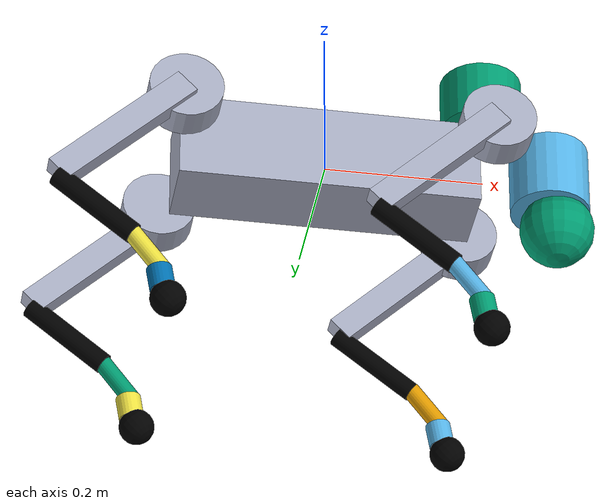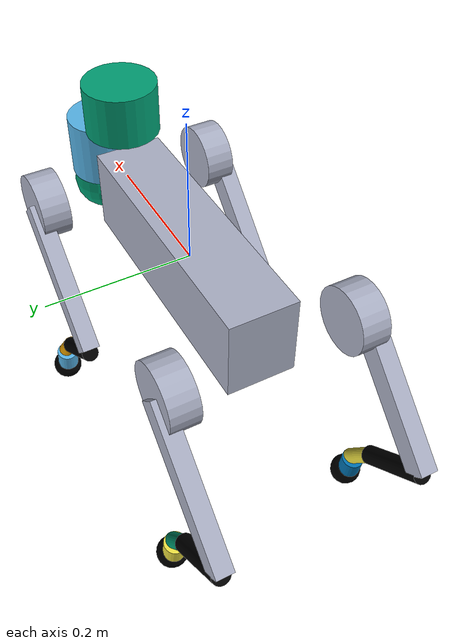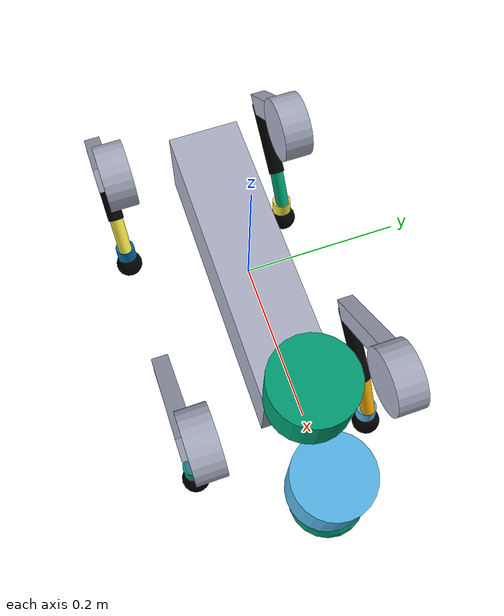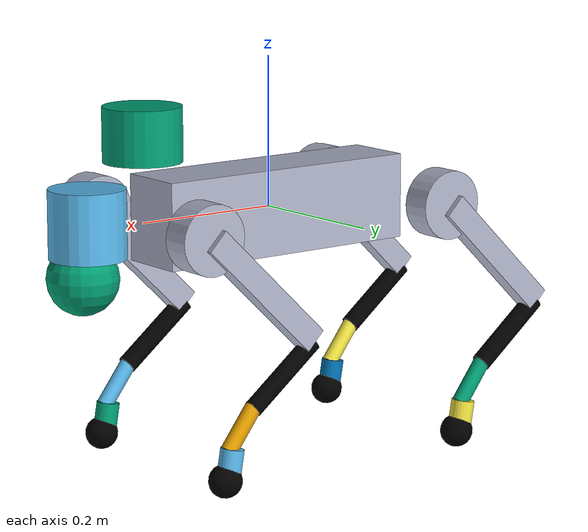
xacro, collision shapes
<robot name="go2_description" xmlns:xacro="http://www.ros.org/wiki/xacro">
  <xacro:arg name="lidar" default="true"/>
  <link name="base">
    <inertial>
      <origin xyz="0.021112 0 -0.005366" rpy="0 0 0" />
      <mass value="6.921" />
      <inertia ixx="0.02448" ixy="0.00012166" ixz="0.0014849" iyy="0.098077" iyz="-3.12E-05" izz="0.107" />
    </inertial>
    <visual>
      <origin xyz="0 0 0" rpy="0 0 0" />
      <geometry>
        <mesh filename="package://go2_description/dae/base.dae" />
      </geometry>
      <material name="深色橡胶_001-effect">
        <color rgba="0.6717055 0.6924257 0.7742702 1" />
      </material>
      <material name="白色logo_001-effect">
        <color rgba="1 1 1 1" />
      </material>
      <material name="黑色贴纸_007-effect">
        <color rgba="0.009018 0.009018 0.009018 1" />
      </material>
      <material name="黑色金属_007-effect">
        <color rgba="0.01341 0.01341 0.01341 1" />
      </material>
      <material name="黑色塑料_003-effect">
        <color rgba="0.023455 0.023455 0.023455 1" />
      </material>
    </visual>
    <collision>
      <origin rpy="0 0 0" xyz="0 0 0" />
      <geometry>
        <box size="0.3762 0.0935 0.114" />
      </geometry>
    </collision>
  </link>
  <link name="Head_upper">
    <inertial>
      <origin xyz="0 0 0" rpy="0 0 0" />
      <mass value="0.001" />
      <inertia ixx="9.6e-06" ixy="0" ixz="0" iyy="9.6e-06" iyz="0" izz="9.6e-06" />
    </inertial>
    <collision>
      <origin xyz="0 0 0" rpy="0 0 0" />
      <geometry>
        <cylinder radius="0.05" length="0.09" />
      </geometry>
    </collision>
  </link>
  <joint name="Head_upper_joint" type="fixed" dont_collapse="true">
    <origin xyz="0.285 0 0.01" rpy="0 0 0" />
    <parent link="base" />
    <child link="Head_upper" />
    <axis xyz="0 0 0" />
  </joint>
  <link name="Head_lower">
    <inertial>
      <origin xyz="0 0 0" rpy="0 0 0" />
      <mass value="0.001" />
      <inertia ixx="9.6e-06" ixy="0" ixz="0" iyy="9.6e-06" iyz="0" izz="9.6e-06" />
    </inertial>
    <collision>
      <origin xyz="0 0 0" rpy="0 0 0" />
      <geometry>
        <sphere radius="0.047" />
      </geometry>
    </collision>
  </link>
  <joint name="Head_lower_joint" type="fixed" dont_collapse="true">
    <origin xyz="0.008 0 -0.07" rpy="0 0 0" />
    <parent link="Head_upper" />
    <child link="Head_lower" />
    <axis xyz="0 0 0" />
  </joint>
  <link name="FL_hip">
    <inertial>
      <origin xyz="-0.0054 0.00194 -0.000105" rpy="0 0 0" />
      <mass value="0.678" />
      <inertia ixx="0.00048" ixy="-3.01E-06" ixz="1.11E-06" iyy="0.000884" iyz="-1.42E-06" izz="0.000596" />
    </inertial>
    <visual>
      <origin xyz="0 0 0" rpy="0 0 0" />
      <geometry>
        <mesh filename="package://go2_description/dae/hip.dae" />
      </geometry>
      <material name="深色橡胶_001-effect">
        <color rgba="0.6717055 0.6924257 0.7742702 1" />
      </material>
      <material name="Material-effect">
        <color rgba="0.9 0.95 0.95 1" />
      </material>
    </visual>
    <collision>
      <origin rpy="1.5707963267948966 0 0" xyz="0 0.08 0" />
      <geometry>
        <cylinder length="0.04" radius="0.046" />
      </geometry>
    </collision>
  </link>
  <joint name="FL_hip_joint" type="fixed">
    <origin xyz="0.1934 0.0465 0" rpy="0.0 0 0" />
    <parent link="base" />
    <child link="FL_hip" />
  </joint>
  <link name="FL_hip_rotor">
    <inertial>
      <origin rpy="0 0 0" xyz="0.0 0.0 0.0" />
      <mass value="0.089" />
      <inertia ixx="0.000111842" ixy="0.0" ixz="0.0" iyy="0.000059647" iyz="0.0" izz="0.000059647" />
    </inertial>
  </link>
  <joint name="FL_hip_rotor_joint" type="fixed">
    <origin rpy="0 0 0" xyz="0.11215 0.04675 0" />
    <parent link="base" />
    <child link="FL_hip_rotor" />
  </joint>
  <link name="FL_thigh">
    <inertial>
      <origin xyz="-0.00374 -0.0223 -0.0327" rpy="0 0 0" />
      <mass value="1.152" />
      <inertia ixx="0.00584" ixy="8.72E-05" ixz="-0.000289" iyy="0.0058" iyz="0.000808" izz="0.00103" />
    </inertial>
    <visual>
      <origin xyz="0 0 0" rpy="0 0 0" />
      <geometry>
        <mesh filename="package://go2_description/dae/thigh.dae" />
      </geometry>
      <material name="深色橡胶_003-effect">
        <color rgba="0.6717055 0.6924257 0.7742702 1" />
      </material>
      <material name="Material_009-effect">
        <color rgba="0.9 0.95 0.95 1" />
      </material>
    </visual>
    <collision>
      <origin rpy="0 1.5707963267948966 0" xyz="0 0 -0.1065" />
      <geometry>
        <box size="0.213 0.0245 0.034" />
      </geometry>
    </collision>
  </link>
  <joint name="FL_thigh_joint" type="fixed">
    <origin xyz="0 0.0955 0" rpy="0 0.8 0" />
    <parent link="FL_hip" />
    <child link="FL_thigh" />
  </joint>
  <link name="FL_thigh_rotor">
    <inertial>
      <origin rpy="0 0 0" xyz="0.0 0.0 0.0" />
      <mass value="0.089" />
      <inertia ixx="0.000059647" ixy="0.0" ixz="0.0" iyy="0.000111842" iyz="0.0" izz="0.000059647" />
    </inertial>
  </link>
  <joint name="FL_thigh_rotor_joint" type="fixed">
    <origin rpy="0 0 0" xyz="0 -0.00015 0" />
    <parent link="FL_hip" />
    <child link="FL_thigh_rotor" />
  </joint>
  <link name="FL_calf">
    <inertial>
      <origin xyz="0.00548 -0.000975 -0.115" rpy="0 0 0" />
      <mass value="0.154" />
      <inertia ixx="0.00108" ixy="3.4E-07" ixz="1.72E-05" iyy="0.0011" iyz="8.28E-06" izz="3.29E-05" />
    </inertial>
    <visual>
      <origin xyz="0 0 0" rpy="0 0 0" />
      <geometry>
        <mesh filename="package://go2_description/dae/calf.dae" />
      </geometry>
      <material name="黑色足端_005-effect">
        <color rgba="0 0 0 1" />
      </material>
      <material name="深色橡胶_005-effect">
        <color rgba="0.6717055 0.6924257 0.7742702 1" />
      </material>
    </visual>
    <collision>
      <origin rpy="0 -0.21 0" xyz="0.008 0 -0.06" />
      <geometry>
        <cylinder length="0.12" radius="0.012" />
      </geometry>
    </collision>
  </link>
  <joint name="FL_calf_joint" type="fixed">
    <origin xyz="0 0 -0.213" rpy="0 -1.5 0" />
    <parent link="FL_thigh" />
    <child link="FL_calf" />
  </joint>
  <link name="FL_calflower">
    <collision>
      <origin rpy="0 0 0" xyz="0 0 0" />
      <geometry>
        <cylinder length="0.065" radius="0.011" />
      </geometry>
    </collision>
  </link>
  <joint name="FL_calflower_joint" type="fixed">
    <origin xyz="0.020 0 -0.148" rpy="0 0.05 0" />
    <parent link="FL_calf" />
    <child link="FL_calflower" />
    <axis xyz="0 0 0" />
  </joint>
  <link name="FL_calflower1">
    <collision>
      <origin rpy="0 0 0" xyz="0 0 0" />
      <geometry>
        <cylinder length="0.03" radius="0.0155" />
      </geometry>
    </collision>
  </link>
  <joint name="FL_calflower1_joint" type="fixed">
    <origin xyz="-0.01 0 -0.04" rpy="0 0.48 0" />
    <parent link="FL_calflower" />
    <child link="FL_calflower1" />
    <axis xyz="0 0 0" />
  </joint>
  <link name="FL_calf_rotor">
    <inertial>
      <origin rpy="0 0 0" xyz="0.0 0.0 0.0" />
      <mass value="0.089" />
      <inertia ixx="0.000059647" ixy="0.0" ixz="0.0" iyy="0.000111842" iyz="0.0" izz="0.000059647" />
    </inertial>
  </link>
  <joint name="FL_calf_rotor_joint" type="fixed">
    <origin rpy="0 0 0" xyz="0 -0.03235 0" />
    <parent link="FL_thigh" />
    <child link="FL_calf_rotor" />
  </joint>
  <link name="FL_foot">
    <inertial>
      <origin xyz="0 0 0" rpy="0 0 0" />
      <mass value="0.04" />
      <inertia ixx="9.6e-06" ixy="0" ixz="0" iyy="9.6e-06" iyz="0" izz="9.6e-06" />
    </inertial>
    <visual>
      <origin xyz="0 0 0" rpy="0 0 0" />
      <geometry>
        <mesh filename="package://go2_description/dae/foot.dae" />
      </geometry>
      <material name="黑色足端_007-effect">
        <color rgba="0 0 0 1" />
      </material>
    </visual>
    <collision>
      <origin rpy="0 0 0" xyz="-0.002 0 0" />
      <geometry>
        <sphere radius="0.022" />
      </geometry>
    </collision>
  </link>
  <joint name="FL_foot_joint" type="fixed" dont_collapse="true">
    <origin xyz="0 0 -0.213" rpy="0 0 0" />
    <parent link="FL_calf" />
    <child link="FL_foot" />
    <axis xyz="0 0 0" />
  </joint>
  <link name="FR_hip">
    <inertial>
      <origin xyz="-0.0054 -0.00194 -0.000105" rpy="0 0 0" />
      <mass value="0.678" />
      <inertia ixx="0.00048" ixy="3.01E-06" ixz="1.11E-06" iyy="0.000884" iyz="1.42E-06" izz="0.000596" />
    </inertial>
    <visual>
      <origin xyz="0 0 0" rpy="3.1415 0 0" />
      <geometry>
        <mesh filename="package://go2_description/dae/hip.dae" />
      </geometry>
      <material name="深色橡胶_001-effect">
        <color rgba="0.6717055 0.6924257 0.7742702 1" />
      </material>
      <material name="Material-effect">
        <color rgba="0.9 0.95 0.95 1" />
      </material>
    </visual>
    <collision>
      <origin rpy="1.5707963267948966 0 0" xyz="0 -0.08 0" />
      <geometry>
        <cylinder length="0.04" radius="0.046" />
      </geometry>
    </collision>
  </link>
  <joint name="FR_hip_joint" type="fixed">
    <origin xyz="0.1934 -0.0465 0" rpy="0.0 0 0" />
    <parent link="base" />
    <child link="FR_hip" />
  </joint>
  <link name="FR_hip_rotor">
    <inertial>
      <origin rpy="0 0 0" xyz="0.0 0.0 0.0" />
      <mass value="0.089" />
      <inertia ixx="0.000111842" ixy="0.0" ixz="0.0" iyy="0.000059647" iyz="0.0" izz="0.000059647" />
    </inertial>
  </link>
  <joint name="FR_hip_rotor_joint" type="fixed">
    <origin rpy="0 0 0" xyz="0.11215 -0.04675 0" />
    <parent link="base" />
    <child link="FR_hip_rotor" />
  </joint>
  <link name="FR_thigh">
    <inertial>
      <origin xyz="-0.00374 0.0223 -0.0327" rpy="0 0 0" />
      <mass value="1.152" />
      <inertia ixx="0.00584" ixy="-8.72E-05" ixz="-0.000289" iyy="0.0058" iyz="-0.000808" izz="0.00103" />
    </inertial>
    <visual>
      <origin xyz="0 0 0" rpy="0 0 0" />
      <geometry>
        <mesh filename="package://go2_description/dae/thigh_mirror.dae" />
      </geometry>
      <material name="深色橡胶_012-effect">
        <color rgba="0.6717055 0.6924257 0.7742702 1" />
      </material>
      <material name="Material_011-effect">
        <color rgba="0.9 0.95 0.95 1" />
      </material>
    </visual>
    <collision>
      <origin rpy="0 1.5707963267948966 0" xyz="0 0 -0.1065" />
      <geometry>
        <box size="0.213 0.0245 0.034" />
      </geometry>
    </collision>
  </link>
  <joint name="FR_thigh_joint" type="fixed">
    <origin xyz="0 -0.0955 0" rpy="0 0.8 0" />
    <parent link="FR_hip" />
    <child link="FR_thigh" />
  </joint>
  <link name="FR_thigh_rotor">
    <inertial>
      <origin rpy="0 0 0" xyz="0.0 0.0 0.0" />
      <mass value="0.089" />
      <inertia ixx="0.000059647" ixy="0.0" ixz="0.0" iyy="0.000111842" iyz="0.0" izz="0.000059647" />
    </inertial>
  </link>
  <joint name="FR_thigh_rotor_joint" type="fixed">
    <origin rpy="0 0 0" xyz="0 0.00015 0" />
    <parent link="FR_hip" />
    <child link="FR_thigh_rotor" />
  </joint>
  <link name="FR_calf">
    <inertial>
      <origin xyz="0.00548 0.000975 -0.115" rpy="0 0 0" />
      <mass value="0.154" />
      <inertia ixx="0.00108" ixy="-3.4E-07" ixz="1.72E-05" iyy="0.0011" iyz="-8.28E-06" izz="3.29E-05" />
    </inertial>
    <visual>
      <origin xyz="0 0 0" rpy="0 0 0" />
      <geometry>
        <mesh filename="package://go2_description/dae/calf_mirror.dae" />
      </geometry>
      <material name="黑色足端_006-effect">
        <color rgba="0 0 0 1" />
      </material>
      <material name="深色橡胶_007-effect">
        <color rgba="0.6717055 0.6924257 0.7742702 1" />
      </material>
    </visual>
    <collision>
      <origin rpy="0 -0.2 0" xyz="0.01 0 -0.06" />
      <geometry>
        <cylinder length="0.12" radius="0.013" />
      </geometry>
    </collision>
  </link>
  <joint name="FR_calf_joint" type="fixed">
    <origin xyz="0 0 -0.213" rpy="0 -1.5 0" />
    <parent link="FR_thigh" />
    <child link="FR_calf" />
  </joint>
  <link name="FR_calflower">
    <collision>
      <origin rpy="0 0 0" xyz="0 0 0" />
      <geometry>
        <cylinder length="0.065" radius="0.011" />
      </geometry>
    </collision>
  </link>
  <joint name="FR_calflower_joint" type="fixed">
    <origin xyz="0.020 0 -0.148" rpy="0 0.05 0" />
    <parent link="FR_calf" />
    <child link="FR_calflower" />
    <axis xyz="0 0 0" />
  </joint>
  <link name="FR_calflower1">
    <collision>
      <origin rpy="0 0 0" xyz="0 0 0" />
      <geometry>
        <cylinder length="0.03" radius="0.0155" />
      </geometry>
    </collision>
  </link>
  <joint name="FR_calflower1_joint" type="fixed">
    <origin xyz="-0.01 0 -0.04" rpy="0 0.48 0" />
    <parent link="FR_calflower" />
    <child link="FR_calflower1" />
    <axis xyz="0 0 0" />
  </joint>
  <link name="FR_calf_rotor">
    <inertial>
      <origin rpy="0 0 0" xyz="0.0 0.0 0.0" />
      <mass value="0.089" />
      <inertia ixx="0.000059647" ixy="0.0" ixz="0.0" iyy="0.000111842" iyz="0.0" izz="0.000059647" />
    </inertial>
  </link>
  <joint name="FR_calf_rotor_joint" type="fixed">
    <origin rpy="0 0 0" xyz="0 0.03235 0" />
    <parent link="FR_thigh" />
    <child link="FR_calf_rotor" />
  </joint>
  <link name="FR_foot">
    <inertial>
      <origin xyz="0 0 0" rpy="0 0 0" />
      <mass value="0.04" />
      <inertia ixx="9.6e-06" ixy="0" ixz="0" iyy="9.6e-06" iyz="0" izz="9.6e-06" />
    </inertial>
    <visual>
      <origin xyz="0 0 0" rpy="0 0 0" />
      <geometry>
        <mesh filename="package://go2_description/dae/foot.dae" />
      </geometry>
      <material name="黑色足端_007-effect">
        <color rgba="0 0 0 1" />
      </material>
    </visual>
    <collision>
      <origin rpy="0 0 0" xyz="-0.002 0 0" />
      <geometry>
        <sphere radius="0.022" />
      </geometry>
    </collision>
  </link>
  <joint name="FR_foot_joint" type="fixed" dont_collapse="true">
    <origin xyz="0 0 -0.213" rpy="0 0 0" />
    <parent link="FR_calf" />
    <child link="FR_foot" />
    <axis xyz="0 0 0" />
  </joint>
  <link name="RL_hip">
    <inertial>
      <origin xyz="0.0054 0.00194 -0.000105" rpy="0 0 0" />
      <mass value="0.678" />
      <inertia ixx="0.00048" ixy="3.01E-06" ixz="-1.11E-06" iyy="0.000884" iyz="-1.42E-06" izz="0.000596" />
    </inertial>
    <visual>
      <origin xyz="0 0 0" rpy="0 3.1415 0" />
      <geometry>
        <mesh filename="package://go2_description/dae/hip.dae" />
      </geometry>
      <material name="深色橡胶_001-effect">
        <color rgba="0.6717055 0.6924257 0.7742702 1" />
      </material>
      <material name="Material-effect">
        <color rgba="0.9 0.95 0.95 1" />
      </material>
    </visual>
    <collision>
      <origin rpy="1.5707963267948966 0 0" xyz="0 0.08 0" />
      <geometry>
        <cylinder length="0.04" radius="0.046" />
      </geometry>
    </collision>
  </link>
  <joint name="RL_hip_joint" type="fixed">
    <origin xyz="-0.1934 0.0465 0" rpy="0.0 0 0" />
    <parent link="base" />
    <child link="RL_hip" />
  </joint>
  <link name="RL_hip_rotor">
    <inertial>
      <origin rpy="0 0 0" xyz="0.0 0.0 0.0" />
      <mass value="0.089" />
      <inertia ixx="0.000111842" ixy="0.0" ixz="0.0" iyy="0.000059647" iyz="0.0" izz="0.000059647" />
    </inertial>
  </link>
  <joint name="RL_hip_rotor_joint" type="fixed">
    <origin rpy="0 0 0" xyz="-0.11215 0.04675 0" />
    <parent link="base" />
    <child link="RL_hip_rotor" />
  </joint>
  <link name="RL_thigh">
    <inertial>
      <origin xyz="-0.00374 -0.0223 -0.0327" rpy="0 0 0" />
      <mass value="1.152" />
      <inertia ixx="0.00584" ixy="8.72E-05" ixz="-0.000289" iyy="0.0058" iyz="0.000808" izz="0.00103" />
    </inertial>
    <visual>
      <origin xyz="0 0 0" rpy="0 0 0" />
      <geometry>
        <mesh filename="package://go2_description/dae/thigh.dae" />
      </geometry>
      <material name="深色橡胶_003-effect">
        <color rgba="0.6717055 0.6924257 0.7742702 1" />
      </material>
      <material name="Material_009-effect">
        <color rgba="0.9 0.95 0.95 1" />
      </material>
    </visual>
    <collision>
      <origin rpy="0 1.5707963267948966 0" xyz="0 0 -0.1065" />
      <geometry>
        <box size="0.213 0.0245 0.034" />
      </geometry>
    </collision>
  </link>
  <joint name="RL_thigh_joint" type="fixed">
    <origin xyz="0 0.0955 0" rpy="0 0.8 0" />
    <parent link="RL_hip" />
    <child link="RL_thigh" />
  </joint>
  <link name="RL_thigh_rotor">
    <inertial>
      <origin rpy="0 0 0" xyz="0.0 0.0 0.0" />
      <mass value="0.089" />
      <inertia ixx="0.000059647" ixy="0.0" ixz="0.0" iyy="0.000111842" iyz="0.0" izz="0.000059647" />
    </inertial>
  </link>
  <joint name="RL_thigh_rotor_joint" type="fixed">
    <origin rpy="0 0 0" xyz="0 -0.00015 0" />
    <parent link="RL_hip" />
    <child link="RL_thigh_rotor" />
  </joint>
  <link name="RL_calf">
    <inertial>
      <origin xyz="0.00548 -0.000975 -0.115" rpy="0 0 0" />
      <mass value="0.154" />
      <inertia ixx="0.00108" ixy="3.4E-07" ixz="1.72E-05" iyy="0.0011" iyz="8.28E-06" izz="3.29E-05" />
    </inertial>
    <visual>
      <origin xyz="0 0 0" rpy="0 0 0" />
      <geometry>
        <mesh filename="package://go2_description/dae/calf.dae" />
      </geometry>
      <material name="黑色足端_005-effect">
        <color rgba="0 0 0 1" />
      </material>
      <material name="深色橡胶_005-effect">
        <color rgba="0.6717055 0.6924257 0.7742702 1" />
      </material>
    </visual>
    <collision>
      <origin rpy="0 -0.2 0" xyz="0.01 0 -0.06" />
      <geometry>
        <cylinder length="0.12" radius="0.013" />
      </geometry>
    </collision>
  </link>
  <joint name="RL_calf_joint" type="fixed">
    <origin xyz="0 0 -0.213" rpy="0 -1.5 0" />
    <parent link="RL_thigh" />
    <child link="RL_calf" />
  </joint>
  <link name="RL_calflower">
    <collision>
      <origin rpy="0 0 0" xyz="0 0 0" />
      <geometry>
        <cylinder length="0.065" radius="0.011" />
      </geometry>
    </collision>
  </link>
  <joint name="RL_calflower_joint" type="fixed">
    <origin xyz="0.020 0 -0.148" rpy="0 0.05 0" />
    <parent link="RL_calf" />
    <child link="RL_calflower" />
    <axis xyz="0 0 0" />
  </joint>
  <link name="RL_calflower1">
    <collision>
      <origin rpy="0 0 0" xyz="0 0 0" />
      <geometry>
        <cylinder length="0.03" radius="0.0155" />
      </geometry>
    </collision>
  </link>
  <joint name="RL_calflower1_joint" type="fixed">
    <origin xyz="-0.01 0 -0.04" rpy="0 0.48 0" />
    <parent link="RL_calflower" />
    <child link="RL_calflower1" />
    <axis xyz="0 0 0" />
  </joint>
  <link name="RL_calf_rotor">
    <inertial>
      <origin rpy="0 0 0" xyz="0.0 0.0 0.0" />
      <mass value="0.089" />
      <inertia ixx="0.000059647" ixy="0.0" ixz="0.0" iyy="0.000111842" iyz="0.0" izz="0.000059647" />
    </inertial>
  </link>
  <joint name="RL_calf_rotor_joint" type="fixed">
    <origin rpy="0 0 0" xyz="0 -0.03235 0" />
    <parent link="RL_thigh" />
    <child link="RL_calf_rotor" />
  </joint>
  <link name="RL_foot">
    <inertial>
      <origin xyz="0 0 0" rpy="0 0 0" />
      <mass value="0.04" />
      <inertia ixx="9.6e-06" ixy="0" ixz="0" iyy="9.6e-06" iyz="0" izz="9.6e-06" />
    </inertial>
    <visual>
      <origin xyz="0 0 0" rpy="0 0 0" />
      <geometry>
        <mesh filename="package://go2_description/dae/foot.dae" />
      </geometry>
      <material name="黑色足端_007-effect">
        <color rgba="0 0 0 1" />
      </material>
    </visual>
    <collision>
      <origin rpy="0 0 0" xyz="-0.002 0 0" />
      <geometry>
        <sphere radius="0.022" />
      </geometry>
    </collision>
  </link>
  <joint name="RL_foot_joint" type="fixed" dont_collapse="true">
    <origin xyz="0 0 -0.213" rpy="0 0 0" />
    <parent link="RL_calf" />
    <child link="RL_foot" />
    <axis xyz="0 0 0" />
  </joint>
  <link name="RR_hip">
    <inertial>
      <origin xyz="0.0054 -0.00194 -0.000105" rpy="0 0 0" />
      <mass value="0.678" />
      <inertia ixx="0.00048" ixy="-3.01E-06" ixz="-1.11E-06" iyy="0.000884" iyz="1.42E-06" izz="0.000596" />
    </inertial>
    <visual>
      <origin xyz="0 0 0" rpy="3.1415 3.1415 0" />
      <geometry>
        <mesh filename="package://go2_description/dae/hip.dae" />
      </geometry>
      <material name="深色橡胶_001-effect">
        <color rgba="0.6717055 0.6924257 0.7742702 1" />
      </material>
      <material name="Material-effect">
        <color rgba="0.9 0.95 0.95 1" />
      </material>
    </visual>
    <collision>
      <origin rpy="1.5707963267948966 0 0" xyz="0 -0.08 0" />
      <geometry>
        <cylinder length="0.04" radius="0.046" />
      </geometry>
    </collision>
  </link>
  <joint name="RR_hip_joint" type="fixed">
    <origin xyz="-0.1934 -0.0465 0" rpy="0.0 0 0" />
    <parent link="base" />
    <child link="RR_hip" />
  </joint>
  <link name="RR_hip_rotor">
    <inertial>
      <origin rpy="0 0 0" xyz="0.0 0.0 0.0" />
      <mass value="0.089" />
      <inertia ixx="0.000111842" ixy="0.0" ixz="0.0" iyy="0.000059647" iyz="0.0" izz="0.000059647" />
    </inertial>
  </link>
  <joint name="RR_hip_rotor_joint" type="fixed">
    <origin rpy="0 0 0" xyz="-0.11215 -0.04675 0" />
    <parent link="base" />
    <child link="RR_hip_rotor" />
  </joint>
  <link name="RR_thigh">
    <inertial>
      <origin xyz="-0.00374 0.0223 -0.0327" rpy="0 0 0" />
      <mass value="1.152" />
      <inertia ixx="0.00584" ixy="-8.72E-05" ixz="-0.000289" iyy="0.0058" iyz="-0.000808" izz="0.00103" />
    </inertial>
    <visual>
      <origin xyz="0 0 0" rpy="0 0 0" />
      <geometry>
        <mesh filename="package://go2_description/dae/thigh_mirror.dae" />
      </geometry>
      <material name="深色橡胶_012-effect">
        <color rgba="0.6717055 0.6924257 0.7742702 1" />
      </material>
      <material name="Material_011-effect">
        <color rgba="0.9 0.95 0.95 1" />
      </material>
    </visual>
    <collision>
      <origin rpy="0 1.5707963267948966 0" xyz="0 0 -0.1065" />
      <geometry>
        <box size="0.213 0.0245 0.034" />
      </geometry>
    </collision>
  </link>
  <joint name="RR_thigh_joint" type="fixed">
    <origin xyz="0 -0.0955 0" rpy="0 0.8 0" />
    <parent link="RR_hip" />
    <child link="RR_thigh" />
  </joint>
  <link name="RR_thigh_rotor">
    <inertial>
      <origin rpy="0 0 0" xyz="0.0 0.0 0.0" />
      <mass value="0.089" />
      <inertia ixx="0.000059647" ixy="0.0" ixz="0.0" iyy="0.000111842" iyz="0.0" izz="0.000059647" />
    </inertial>
  </link>
  <joint name="RR_thigh_rotor_joint" type="fixed">
    <origin rpy="0 0 0" xyz="0 0.00015 0" />
    <parent link="RR_hip" />
    <child link="RR_thigh_rotor" />
  </joint>
  <link name="RR_calf">
    <inertial>
      <origin xyz="0.00548 0.000975 -0.115" rpy="0 0 0" />
      <mass value="0.154" />
      <inertia ixx="0.00108" ixy="-3.4E-07" ixz="1.72E-05" iyy="0.0011" iyz="-8.28E-06" izz="3.29E-05" />
    </inertial>
    <visual>
      <origin xyz="0 0 0" rpy="0 0 0" />
      <geometry>
        <mesh filename="package://go2_description/dae/calf_mirror.dae" />
      </geometry>
      <material name="黑色足端_006-effect">
        <color rgba="0 0 0 1" />
      </material>
      <material name="深色橡胶_007-effect">
        <color rgba="0.6717055 0.6924257 0.7742702 1" />
      </material>
    </visual>
    <collision>
      <origin rpy="0 -0.2 0" xyz="0.01 0 -0.06" />
      <geometry>
        <cylinder length="0.12" radius="0.013" />
      </geometry>
    </collision>
  </link>
  <joint name="RR_calf_joint" type="fixed">
    <origin xyz="0 0 -0.213" rpy="0 -1.5 0" />
    <parent link="RR_thigh" />
    <child link="RR_calf" />
  </joint>
  <link name="RR_calflower">
    <collision>
      <origin rpy="0 0 0" xyz="0 0 0" />
      <geometry>
        <cylinder length="0.065" radius="0.011" />
      </geometry>
    </collision>
  </link>
  <joint name="RR_calflower_joint" type="fixed">
    <origin xyz="0.020 0 -0.148" rpy="0 0.05 0" />
    <parent link="RR_calf" />
    <child link="RR_calflower" />
    <axis xyz="0 0 0" />
  </joint>
  <link name="RR_calflower1">
    <collision>
      <origin rpy="0 0 0" xyz="0 0 0" />
      <geometry>
        <cylinder length="0.03" radius="0.0155" />
      </geometry>
    </collision>
  </link>
  <joint name="RR_calflower1_joint" type="fixed">
    <origin xyz="-0.01 0 -0.04" rpy="0 0.48 0" />
    <parent link="RR_calflower" />
    <child link="RR_calflower1" />
    <axis xyz="0 0 0" />
  </joint>
  <link name="RR_calf_rotor">
    <inertial>
      <origin rpy="0 0 0" xyz="0.0 0.0 0.0" />
      <mass value="0.089" />
      <inertia ixx="0.000059647" ixy="0.0" ixz="0.0" iyy="0.000111842" iyz="0.0" izz="0.000059647" />
    </inertial>
  </link>
  <joint name="RR_calf_rotor_joint" type="fixed">
    <origin rpy="0 0 0" xyz="0 0.03235 0" />
    <parent link="RR_thigh" />
    <child link="RR_calf_rotor" />
  </joint>
  <link name="RR_foot">
    <inertial>
      <origin xyz="0 0 0" rpy="0 0 0" />
      <mass value="0.04" />
      <inertia ixx="9.6e-06" ixy="0" ixz="0" iyy="9.6e-06" iyz="0" izz="9.6e-06" />
    </inertial>
    <visual>
      <origin xyz="0 0 0" rpy="0 0 0" />
      <geometry>
        <mesh filename="package://go2_description/dae/foot.dae" />
      </geometry>
      <material name="黑色足端_007-effect">
        <color rgba="0 0 0 1" />
      </material>
    </visual>
    <collision>
      <origin rpy="0 0 0" xyz="-0.002 0 0" />
      <geometry>
        <sphere radius="0.022" />
      </geometry>
    </collision>
  </link>
  <joint name="RR_foot_joint" type="fixed" dont_collapse="true">
    <origin xyz="0 0 -0.213" rpy="0 0 0" />
    <parent link="RR_calf" />
    <child link="RR_foot" />
    <axis xyz="0 0 0" />
  </joint>
  <link name="imu">
    <inertial>
      <origin xyz="0 0 0" rpy="0 0 0" />
      <mass value="0" />
      <inertia ixx="0" ixy="0" ixz="0" iyy="0" iyz="0" izz="0" />
    </inertial>
  </link>
  <joint name="imu_joint" type="fixed">
    <origin xyz="-0.02557 0 0.04232" rpy="0 0 0" />
    <parent link="base" />
    <child link="imu" />
    <axis xyz="0 0 0" />
  </joint>
  <link name="radar">
    <inertial>
      <origin xyz="0 0 0" rpy="0 0 0" />
      <mass value="0" />
      <inertia ixx="0" ixy="0" ixz="0" iyy="0" iyz="0" izz="0" />
    </inertial>
  </link>
  <joint name="radar_joint" type="fixed">
    <origin xyz="0.28945 0 -0.046825" rpy="0 2.8782 0" />
    <parent link="base" />
    <child link="radar" />
    <axis xyz="0 0 0" />
  </joint>
  <joint name="front_camera_joint" type="fixed">
    <origin rpy="0 0 0" xyz="0.32715 -0.00003 0.04297" />
    <parent link="base" />
    <child link="front_camera" />
  </joint>
  <link name="front_camera">
  </link>
  <xacro:if value="$(arg lidar)">
    <xacro:include filename="$(find go2_description)/xacro/velodyne.xacro"/>
  </xacro:if>
  <gazebo>
    <plugin name="planar_move_controller" filename="libgazebo_ros_planar_move.so">
      <ros>
        <namespace>/</namespace>
        <remapping>cmd_vel:=cmd_vel</remapping>
        <remapping>odom:=odom</remapping>
      </ros>
      <update_rate>50</update_rate>
      <publish_rate>50</publish_rate>
      <publish_odom>true</publish_odom>
      <publish_odom_tf>true</publish_odom_tf>
      <odometry_frame>odom</odometry_frame>
      <robot_base_frame>base</robot_base_frame>
      <covariance_x>0.0001</covariance_x>
      <covariance_y>0.0001</covariance_y>
      <covariance_yaw>0.01</covariance_yaw>
    </plugin>
  </gazebo>
  <gazebo reference="base">
    <mu1>0.6</mu1>
    <mu2>0.6</mu2>
    <kp>1000000.0</kp>
    <kd>1.0</kd>
  </gazebo>

  <gazebo reference="FL_foot">
    <mu1>0.0</mu1>
    <mu2>0.0</mu2>
    <kp>1000000.0</kp>
    <kd>1.0</kd>
  </gazebo>
  <gazebo reference="FR_foot">
    <mu1>0.0</mu1>
    <mu2>0.0</mu2>
    <kp>1000000.0</kp>
    <kd>1.0</kd>
  </gazebo>
  <gazebo reference="RL_foot">
    <mu1>0.0</mu1>
    <mu2>0.0</mu2>
    <kp>1000000.0</kp>
    <kd>1.0</kd>
  </gazebo>
  <gazebo reference="RR_foot">
    <mu1>0.0</mu1>
    <mu2>0.0</mu2>
    <kp>1000000.0</kp>
    <kd>1.0</kd>
  </gazebo>
</robot>

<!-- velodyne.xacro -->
<robot xmlns:xacro="http://www.ros.org/wiki/xacro">
    <joint name="velodyne_base_mount_joint" type="fixed">
        <origin rpy="0 0 0" xyz="0.2 0 0.08"/>
        <parent link="base"/>
        <child link="velodyne_base_link"/>
    </joint>
    <link name="velodyne_base_link">
        <inertial>
        <mass value="0.83"/>
        <origin xyz="0 0 0.03585"/>
        <inertia ixx="0.000908059425" ixy="0" ixz="0" iyy="0.000908059425" iyz="0" izz="0.0011049624"/>
        </inertial>
        <visual>
        <geometry>
            <mesh filename="file://$(find velodyne_description)/meshes/VLP16_base_1.dae"/>
        </geometry>
        </visual>
        <visual>
        <geometry>
            <mesh filename="file://$(find velodyne_description)/meshes/VLP16_base_2.dae"/>
        </geometry>
        </visual>
        <collision>
        <origin rpy="0 0 0" xyz="0 0 0.03585"/>
        <geometry>
            <cylinder length="0.0717" radius="0.0516"/>
        </geometry>
        </collision>
    </link>
    <joint name="velodyne_base_scan_joint" type="fixed">
        <origin rpy="0 0 0" xyz="0 0 0.0377"/>
        <parent link="velodyne_base_link"/>
        <child link="velodyne"/>
    </joint>
    <link name="velodyne">
        <inertial>
        <mass value="0.01"/>
        <origin xyz="0 0 0"/>
        <inertia ixx="1e-7" ixy="0" ixz="0" iyy="1e-7" iyz="0" izz="1e-7"/>
        </inertial>
        <visual>
        <origin xyz="0 0 -0.0377"/>
        <geometry>
            <mesh filename="file://$(find velodyne_description)/meshes/VLP16_scan.dae"/>
        </geometry>
        </visual>
    </link>
    <!-- Gazebo requires the velodyne_gazebo_plugins package -->
    <gazebo reference="velodyne">
        <sensor name="velodyne-VLP16" type="ray">
        <pose>0 0 0 0 0 0</pose>
        <visualize>false</visualize>
        <update_rate>10</update_rate>
        <ray>
            <scan>
            <horizontal>
                <samples>440</samples>
                <resolution>1</resolution>
                <min_angle>-3.141592653589793</min_angle>
                <max_angle>3.141592653589793</max_angle>
            </horizontal>
            <vertical>
                <samples>16</samples>
                <resolution>1</resolution>
                <min_angle>-0.2617993877991494</min_angle>
                <max_angle> 0.2617993877991494</max_angle>
            </vertical>
            </scan>
            <range>
            <min>0.3</min>
            <max>131.0</max>
            <resolution>0.001</resolution>
            </range>
            <noise>
            <type>gaussian</type>
            <mean>0.0</mean>
            <stddev>0.0</stddev>
            </noise>
        </ray>
        <plugin filename="libgazebo_ros_velodyne_laser.so" name="gazebo_ros_laser_controller">
            <ros>
              <namespace>/</namespace>
              <remapping>~/out:=velodyne_points</remapping>
            </ros>
            <frame_name>velodyne</frame_name>
            <organize_cloud>false</organize_cloud>
            <min_range>0.9</min_range>
            <max_range>130.0</max_range>
            <gaussian_noise>0.008</gaussian_noise>

        </plugin>
        </sensor>
    </gazebo>
</robot>
